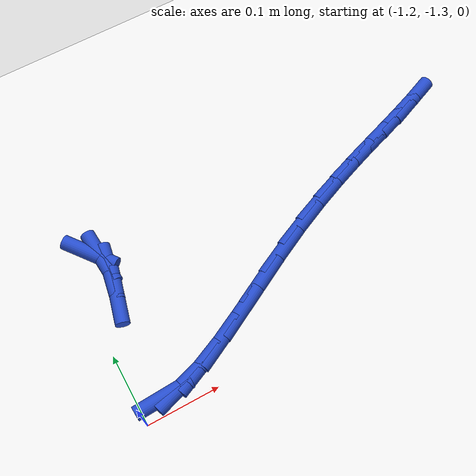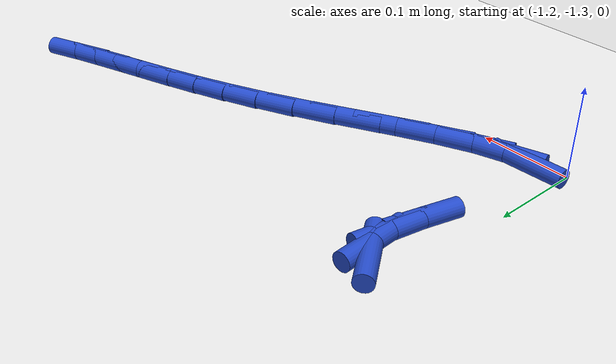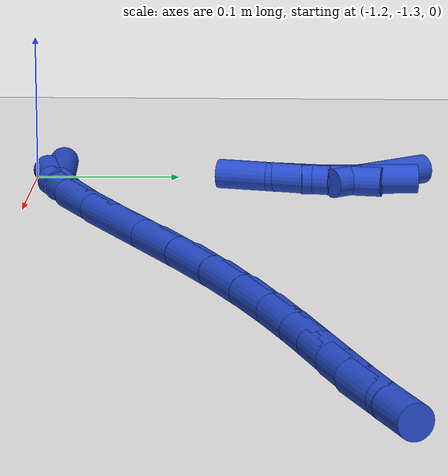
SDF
<sdf version="1.6">
 <world name="default">
  <model name="ground_plane">
   <static>1</static>
   <link name="link">
    <collision name="collision">
     <geometry><plane><normal>0 0 1</normal><size>100 100</size></plane></geometry>
     <surface><friction><ode><mu>100</mu><mu2>50</mu2></ode></friction></surface>
    </collision>
    <visual name="visual">
     <cast_shadows>0</cast_shadows>
     <geometry><plane><normal>0 0 1</normal><size>100 100</size></plane></geometry>
     <material>
      <script><uri>file://media/materials/scripts/gazebo.material</uri><name>Gazebo/WhiteGlow</name></script>
     </material>
    </visual>
   </link>
  </model>
  <model name="line">
   <link name="link_161">
    <pose>-1.1657221031923446 -1.0603413591657158 0.01 0 1.57 -0.9247826277932281</pose>
    <collision name="collision">
     <geometry><cylinder><radius>0.01</radius><length>0.08</length></cylinder></geometry>
    </collision>
    <visual name="visual">
     <material>
      <script><name>Gazebo/Blue</name><uri>file://media/materials/scripts/gazebo.material</uri></script>
     </material>
     <geometry><cylinder><radius>0.01</radius><length>0.08</length></cylinder></geometry>
    </visual>
   </link>
   <link name="link_162">
    <pose>-1.1557933336230346 -1.0735106527992746 0.01 0 1.57 -1.508722812456768</pose>
    <collision name="collision">
     <geometry><cylinder><radius>0.01</radius><length>0.08</length></cylinder></geometry>
    </collision>
    <visual name="visual">
     <material>
      <script><name>Gazebo/Blue</name><uri>file://media/materials/scripts/gazebo.material</uri></script>
     </material>
     <geometry><cylinder><radius>0.01</radius><length>0.08</length></cylinder></geometry>
    </visual>
   </link>
   <link name="link_163">
    <pose>-1.1543004511400108 -1.097529988375242 0.01 0 1.57 1.3884796910794368</pose>
    <collision name="collision">
     <geometry><cylinder><radius>0.01</radius><length>0.08</length></cylinder></geometry>
    </collision>
    <visual name="visual">
     <material>
      <script><name>Gazebo/Blue</name><uri>file://media/materials/scripts/gazebo.material</uri></script>
     </material>
     <geometry><cylinder><radius>0.01</radius><length>0.08</length></cylinder></geometry>
    </visual>
   </link>
   <link name="link_164">
    <pose>-1.1606205477328402 -1.1318105442309387 0.01 0 1.57 1.3184355702888118</pose>
    <collision name="collision">
     <geometry><cylinder><radius>0.01</radius><length>0.08</length></cylinder></geometry>
    </collision>
    <visual name="visual">
     <material>
      <script><name>Gazebo/Blue</name><uri>file://media/materials/scripts/gazebo.material</uri></script>
     </material>
     <geometry><cylinder><radius>0.01</radius><length>0.08</length></cylinder></geometry>
    </visual>
   </link>
   <link name="link_169">
    <pose>-1.1668551742163051 -1.2796884620773032 0.01 0 1.57 0.0455649416437357</pose>
    <collision name="collision">
     <geometry><cylinder><radius>0.01</radius><length>0.08</length></cylinder></geometry>
    </collision>
    <visual name="visual">
     <material>
      <script><name>Gazebo/Blue</name><uri>file://media/materials/scripts/gazebo.material</uri></script>
     </material>
     <geometry><cylinder><radius>0.01</radius><length>0.08</length></cylinder></geometry>
    </visual>
   </link>
   <link name="link_170">
    <pose>-1.1422423340168604 -1.2785662026775888 0.01 0 1.57 0.30758856727224115</pose>
    <collision name="collision">
     <geometry><cylinder><radius>0.01</radius><length>0.08</length></cylinder></geometry>
    </collision>
    <visual name="visual">
     <material>
      <script><name>Gazebo/Blue</name><uri>file://media/materials/scripts/gazebo.material</uri></script>
     </material>
     <geometry><cylinder><radius>0.01</radius><length>0.08</length></cylinder></geometry>
    </visual>
   </link>
   <link name="link_171">
    <pose>-1.1099624320674986 -1.2683118241767508 0.01 0 1.57 0.42155670644877813</pose>
    <collision name="collision">
     <geometry><cylinder><radius>0.01</radius><length>0.08</length></cylinder></geometry>
    </collision>
    <visual name="visual">
     <material>
      <script><name>Gazebo/Blue</name><uri>file://media/materials/scripts/gazebo.material</uri></script>
     </material>
     <geometry><cylinder><radius>0.01</radius><length>0.08</length></cylinder></geometry>
    </visual>
   </link>
   <link name="link_172">
    <pose>-1.0719218367680254 -1.2512528614842617 0.01 0 1.57 0.47482297259066353</pose>
    <collision name="collision">
     <geometry><cylinder><radius>0.01</radius><length>0.08</length></cylinder></geometry>
    </collision>
    <visual name="visual">
     <material>
      <script><name>Gazebo/Blue</name><uri>file://media/materials/scripts/gazebo.material</uri></script>
     </material>
     <geometry><cylinder><radius>0.01</radius><length>0.08</length></cylinder></geometry>
    </visual>
   </link>
   <link name="link_173">
    <pose>-1.0300269165182458 -1.2297168495095938 0.01 0 1.57 0.49531642282651267</pose>
    <collision name="collision">
     <geometry><cylinder><radius>0.01</radius><length>0.08</length></cylinder></geometry>
    </collision>
    <visual name="visual">
     <material>
      <script><name>Gazebo/Blue</name><uri>file://media/materials/scripts/gazebo.material</uri></script>
     </material>
     <geometry><cylinder><radius>0.01</radius><length>0.08</length></cylinder></geometry>
    </visual>
   </link>
   <link name="link_174">
    <pose>-0.9861840397179663 -1.2060313231622213 0.01 0 1.57 0.49177325062374067</pose>
    <collision name="collision">
     <geometry><cylinder><radius>0.01</radius><length>0.08</length></cylinder></geometry>
    </collision>
    <visual name="visual">
     <material>
      <script><name>Gazebo/Blue</name><uri>file://media/materials/scripts/gazebo.material</uri></script>
     </material>
     <geometry><cylinder><radius>0.01</radius><length>0.08</length></cylinder></geometry>
    </visual>
   </link>
   <link name="link_175">
    <pose>-0.9422995747669914 -1.182523817351615 0.01 0 1.57 0.4646916865876481</pose>
    <collision name="collision">
     <geometry><cylinder><radius>0.01</radius><length>0.08</length></cylinder></geometry>
    </collision>
    <visual name="visual">
     <material>
      <script><name>Gazebo/Blue</name><uri>file://media/materials/scripts/gazebo.material</uri></script>
     </material>
     <geometry><cylinder><radius>0.01</radius><length>0.08</length></cylinder></geometry>
    </visual>
   </link>
   <link name="link_176">
    <pose>-0.9002057468456205 -1.1614219381491222 0.01 0 1.57 0.4266757642537968</pose>
    <collision name="collision">
     <geometry><cylinder><radius>0.01</radius><length>0.08</length></cylinder></geometry>
    </collision>
    <visual name="visual">
     <material>
      <script><name>Gazebo/Blue</name><uri>file://media/materials/scripts/gazebo.material</uri></script>
     </material>
     <geometry><cylinder><radius>0.01</radius><length>0.08</length></cylinder></geometry>
    </visual>
   </link>
   <link name="link_177">
    <pose>-0.8605923465867727 -1.1434135398090444 0.01 0 1.57 0.39198774997282954</pose>
    <collision name="collision">
     <geometry><cylinder><radius>0.01</radius><length>0.08</length></cylinder></geometry>
    </collision>
    <visual name="visual">
     <material>
      <script><name>Gazebo/Blue</name><uri>file://media/materials/scripts/gazebo.material</uri></script>
     </material>
     <geometry><cylinder><radius>0.01</radius><length>0.08</length></cylinder></geometry>
    </visual>
   </link>
   <link name="link_178">
    <pose>-0.823252509726469 -1.1279779819634548 0.01 0 1.57 0.36321807700728465</pose>
    <collision name="collision">
     <geometry><cylinder><radius>0.01</radius><length>0.08</length></cylinder></geometry>
    </collision>
    <visual name="visual">
     <material>
      <script><name>Gazebo/Blue</name><uri>file://media/materials/scripts/gazebo.material</uri></script>
     </material>
     <geometry><cylinder><radius>0.01</radius><length>0.08</length></cylinder></geometry>
    </visual>
   </link>
   <link name="link_179">
    <pose>-0.787955290744904 -1.1145621679802975 0.01 0 1.57 0.3427601994522478</pose>
    <collision name="collision">
     <geometry><cylinder><radius>0.01</radius><length>0.08</length></cylinder></geometry>
    </collision>
    <visual name="visual">
     <material>
      <script><name>Gazebo/Blue</name><uri>file://media/materials/scripts/gazebo.material</uri></script>
     </material>
     <geometry><cylinder><radius>0.01</radius><length>0.08</length></cylinder></geometry>
    </visual>
   </link>
   <link name="link_180">
    <pose>-0.7544697441222689 -1.1026130012275155 0.01 0 1.57 0.33301029239070024</pose>
    <collision name="collision">
     <geometry><cylinder><radius>0.01</radius><length>0.08</length></cylinder></geometry>
    </collision>
    <visual name="visual">
     <material>
      <script><name>Gazebo/Blue</name><uri>file://media/materials/scripts/gazebo.material</uri></script>
     </material>
     <geometry><cylinder><radius>0.01</radius><length>0.08</length></cylinder></geometry>
    </visual>
   </link>
   <link name="link_181">
    <pose>-0.7225649243387561 -1.091577385073053 0.01 0 1.57 0.33611779042898215</pose>
    <collision name="collision">
     <geometry><cylinder><radius>0.01</radius><length>0.08</length></cylinder></geometry>
    </collision>
    <visual name="visual">
     <material>
      <script><name>Gazebo/Blue</name><uri>file://media/materials/scripts/gazebo.material</uri></script>
     </material>
     <geometry><cylinder><radius>0.01</radius><length>0.08</length></cylinder></geometry>
    </visual>
   </link>
   <link name="link_182">
    <pose>-0.6920098858745571 -1.0809022228848522 0.01 0 1.57 0.3536748372800555</pose>
    <collision name="collision">
     <geometry><cylinder><radius>0.01</radius><length>0.08</length></cylinder></geometry>
    </collision>
    <visual name="visual">
     <material>
      <script><name>Gazebo/Blue</name><uri>file://media/materials/scripts/gazebo.material</uri></script>
     </material>
     <geometry><cylinder><radius>0.01</radius><length>0.08</length></cylinder></geometry>
    </visual>
   </link>
   <link name="link_183">
    <pose>-0.6625736832098662 -1.0700344180308583 0.01 0 1.57 0.3863573911819483</pose>
    <collision name="collision">
     <geometry><cylinder><radius>0.01</radius><length>0.08</length></cylinder></geometry>
    </collision>
    <visual name="visual">
     <material>
      <script><name>Gazebo/Blue</name><uri>file://media/materials/scripts/gazebo.material</uri></script>
     </material>
     <geometry><cylinder><radius>0.01</radius><length>0.08</length></cylinder></geometry>
    </visual>
   </link>
  </model>
 </world>
</sdf>
